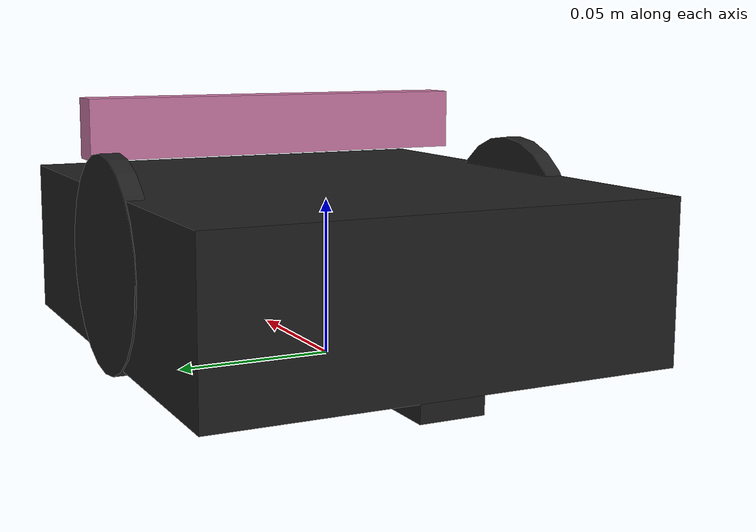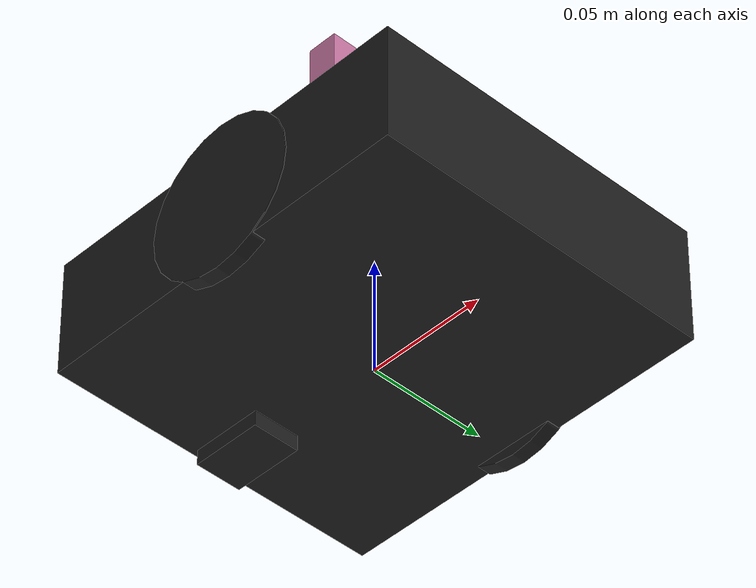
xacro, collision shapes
<?xml version="1.0" ?>
<robot name="romipi" xmlns:xacro="http://ros.org/wiki/xacro">
  <xacro:include filename="$(find romipi_description)/urdf/common_properties.xacro"/>
  <xacro:include filename="$(find romipi_description)/urdf/romipi.gazebo.xacro"/>

 <xacro:property name="r200_cam_rgb_px" value="0.005"/>
  <xacro:property name="r200_cam_rgb_py" value="0.018"/>
  <xacro:property name="r200_cam_rgb_pz" value="0.013"/>
  <xacro:property name="r200_cam_depth_offset" value="0.01"/>

  <link name="base_footprint"/>

  <joint name="base_joint" type="fixed">
    <parent link="base_footprint"/>
    <child link="base_link"/>
    <origin xyz="0.0 0.0 0" rpy="0 0 0"/>
  </joint>

  <link name="base_link">
    <visual>
      <origin xyz="0.0 0.0 0.0" rpy="0 0 0"/>
      <geometry>
        <mesh filename="package://romipi_description/meshes/bases/romi_base.stl" scale="1 1 1"/>
      </geometry>
      <material name="light_black"/>
    </visual>

    <collision>
      <origin xyz="0.0 0.0 0.0315" rpy="0 0 0"/>
      <geometry>
        <box size="0.1635 0.145 0.05"/>
      </geometry>
    </collision>

    <inertial>
      <origin xyz="0 0 0" rpy="0 0 0"/>
      <mass value="8.2573504e-01"/>
      <inertia ixx="2.2124416e-03" ixy="-1.2294101e-05" ixz="3.4938785e-05"
               iyy="2.1193702e-03" iyz="-5.0120904e-06"
               izz="2.0064271e-03" />
    </inertial>
  </link>

  <joint name="wheel_left_joint" type="continuous">
    <parent link="base_link"/>
    <child link="wheel_left_link"/>
    <origin xyz="0.0 0.07 0.0345" rpy="-1.57 0 0"/>
    <axis xyz="0 0 1"/>
  </joint>

  <link name="wheel_left_link">
    <visual>
      <origin xyz="0 0.0 0.0" rpy="1.57 0 0"/>
      <geometry>
        <mesh filename="package://romipi_description/meshes/wheels/romi-left-wheel.stl" scale="1 1 1"/>
      </geometry>
      <material name="dark"/>
    </visual>

    <collision>
      <origin xyz="0 0 0" rpy="0 0 0"/>
      <geometry>
        <cylinder length="0.006" radius="0.033"/>
      </geometry>
    </collision>

    <inertial>
      <origin xyz="0 0 0" />
      <mass value="2.8498940e-02" />
      <inertia ixx="1.1175580e-05" ixy="-4.2369783e-11" ixz="-5.9381719e-09"
               iyy="1.1192413e-05" iyz="-1.4400107e-11"
               izz="2.0712558e-05" />
      </inertial>
  </link>

  <joint name="wheel_right_joint" type="continuous">
    <parent link="base_link"/>
    <child link="wheel_right_link"/>
    <origin xyz="0.0 -0.07 0.0345" rpy="-1.57 0 0"/>
    <axis xyz="0 0 1"/>
  </joint>

  <link name="wheel_right_link">
    <visual>
      <origin xyz="0 0 0" rpy="1.57 0 0"/>
      <geometry>
        <mesh filename="package://romipi_description/meshes/wheels/romi-right-wheel.stl" scale="1 1 1"/>
      </geometry>
      <material name="dark"/>
    </visual>

    <collision>
      <origin xyz="0 0 0" rpy="0 0 0"/>
      <geometry>
        <cylinder length="0.006" radius="0.033"/>
      </geometry>
    </collision>

    <inertial>
      <origin xyz="0 0 0" />
      <mass value="2.8498940e-02" />
      <inertia ixx="1.1175580e-05" ixy="-4.2369783e-11" ixz="-5.9381719e-09"
               iyy="1.1192413e-05" iyz="-1.4400107e-11"
               izz="2.0712558e-05" />
      </inertial>
  </link>

  <joint name="caster_back_joint" type="fixed">
    <parent link="base_link"/>
    <child link="caster_back_link"/>
    <origin xyz="-0.0641 0 0" rpy="0 0 0"/>
  </joint>

  <link name="caster_back_link">
    <visual>
      <origin xyz="0 0.0 0.0" rpy="0 0 0"/>
      <geometry>
        <mesh filename="package://romipi_description/meshes/wheels/romi-back-castor.stl" scale="1 1 1"/>

      </geometry>
      <material name="dark"/>
    </visual>

    <collision>
      <origin xyz="0 0 0.005" rpy="0 0 0"/>
      <geometry>
        <box size="0.030 0.02 0.01"/>
      </geometry>
    </collision>

    <inertial>
      <origin xyz="0 0 0" />
      <mass value="0.005" />
      <inertia ixx="0.001" ixy="0.0" ixz="0.0"
               iyy="0.001" iyz="0.0"
               izz="0.001" />
    </inertial>
  </link>

  <joint name="imu_joint" type="fixed">
    <parent link="base_link"/>
    <child link="imu_link"/>
    <origin xyz="-0.032 0 0.068" rpy="0 0 0"/>
  </joint>

  <link name="imu_link"/>

    <joint name="camera_joint" type="fixed">
    <origin xyz="0.04 -0.065 0.065" rpy="0 0 0"/>
    <parent link="base_link"/>
    <child link="camera_link"/>
  </joint>

  <link name="camera_link">
    <visual>
     <origin xyz="0 0 0" rpy="1.57 0 1.57"/>
      <geometry>
       <mesh filename="package://romipi_description/meshes/sensors/r200.dae" />
      </geometry>
    </visual>
    <collision>
      <origin xyz="0.003 0.065 0.0065" rpy="0 0 0"/>
      <geometry>
        <box size="0.012 0.132 0.020"/>
      </geometry>
    </collision>
  </link>

  <joint name="camera_rgb_joint" type="fixed">
    <origin xyz="${r200_cam_rgb_px} ${r200_cam_rgb_py} ${r200_cam_rgb_pz}" rpy="0 0 0"/>
    <parent link="camera_link"/>
    <child link="camera_rgb_frame"/>
  </joint>
  <link name="camera_rgb_frame"/>

  <joint name="camera_rgb_optical_joint" type="fixed">
    <origin xyz="0 0 0" rpy="-1.57 0 -1.57"/>
    <parent link="camera_rgb_frame"/>
    <child link="camera_rgb_optical_frame"/>
  </joint>
  <link name="camera_rgb_optical_frame"/>

  <joint name="camera_depth_joint" type="fixed">
    <origin xyz="${r200_cam_rgb_px} ${r200_cam_rgb_py + r200_cam_depth_offset} ${r200_cam_rgb_pz}" rpy="0 0 0"/>
    <parent link="camera_link"/>
    <child link="camera_depth_frame"/>
  </joint>
  <link name="camera_depth_frame"/>

  <joint name="camera_depth_optical_joint" type="fixed">
    <origin xyz="0 0 0" rpy="-1.57 0 -1.57"/>
    <parent link="camera_depth_frame"/>
    <child link="camera_depth_optical_frame"/>
  </joint>
  <link name="camera_depth_optical_frame"/>

</robot>
